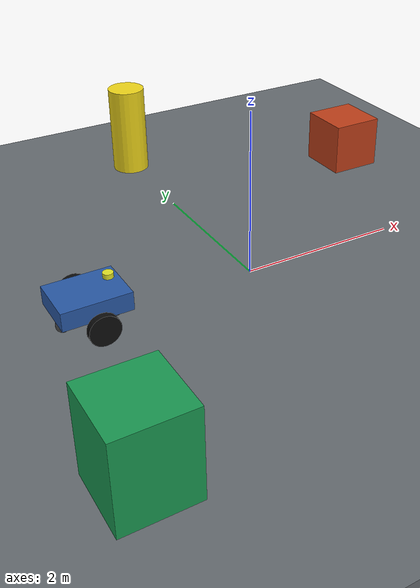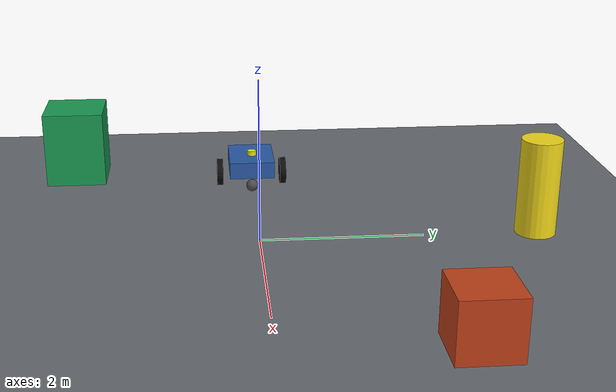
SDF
<?xml version="1.0"?>
<sdf version="1.9">
  <world name="baseline">
    <physics name="fixed_step" type="ignored">
      <max_step_size>0.001</max_step_size>
      <real_time_factor>1.0</real_time_factor>
      <real_time_update_rate>1000</real_time_update_rate>
    </physics>

    <gravity>0 0 -9.81</gravity>

    <plugin filename="gz-sim-physics-system" name="gz::sim::systems::Physics"/>
    <plugin filename="gz-sim-user-commands-system" name="gz::sim::systems::UserCommands"/>
    <plugin filename="gz-sim-scene-broadcaster-system" name="gz::sim::systems::SceneBroadcaster"/>
    <plugin filename="gz-sim-sensors-system" name="gz::sim::systems::Sensors">
      <render_engine>ogre2</render_engine>
    </plugin>
    <plugin filename="gz-sim-imu-system" name="gz::sim::systems::Imu"/>

    <light type="directional" name="sun">
      <cast_shadows>true</cast_shadows>
      <pose>0 0 10 0 0 0</pose>
      <diffuse>0.85 0.85 0.85 1</diffuse>
      <specular>0.2 0.2 0.2 1</specular>
      <attenuation>
        <range>1000</range>
        <constant>0.9</constant>
        <linear>0.01</linear>
        <quadratic>0.001</quadratic>
      </attenuation>
      <direction>-0.4 0.2 -0.9</direction>
    </light>

    <model name="ground_plane">
      <static>true</static>
      <link name="ground_link">
        <collision name="ground_collision">
          <geometry>
            <box>
              <size>30 20 0.10</size>
            </box>
          </geometry>
        </collision>
        <visual name="ground_visual">
          <geometry>
            <box>
              <size>30 20 0.10</size>
            </box>
          </geometry>
          <material>
            <ambient>0.32 0.34 0.36 1</ambient>
            <diffuse>0.40 0.42 0.44 1</diffuse>
            <specular>0.05 0.05 0.05 1</specular>
          </material>
        </visual>
      </link>
      <pose>0 0 -0.05 0 0 0</pose>
    </model>

    <!-- Fixed reference objects make the LiDAR view and rover motion legible. -->
    <model name="reference_block_east">
      <static>true</static>
      <pose>2.8 2.0 0.35 0 0 0</pose>
      <link name="block_link">
        <collision name="block_collision"><geometry><box><size>0.7 0.7 0.7</size></box></geometry></collision>
        <visual name="block_visual">
          <geometry><box><size>0.7 0.7 0.7</size></box></geometry>
          <material><ambient>0.55 0.18 0.08 1</ambient><diffuse>0.75 0.25 0.10 1</diffuse></material>
        </visual>
      </link>
    </model>

    <model name="reference_block_west">
      <static>true</static>
      <pose>-2.5 -2.4 0.50 0 0 0</pose>
      <link name="block_link">
        <collision name="block_collision"><geometry><box><size>0.8 0.8 1.0</size></box></geometry></collision>
        <visual name="block_visual">
          <geometry><box><size>0.8 0.8 1.0</size></box></geometry>
          <material><ambient>0.08 0.42 0.25 1</ambient><diffuse>0.10 0.60 0.32 1</diffuse></material>
        </visual>
      </link>
    </model>

    <model name="reference_marker_north">
      <static>true</static>
      <pose>0 3.4 0.6 0 0 0</pose>
      <link name="marker_link">
        <collision name="marker_collision"><geometry><cylinder><radius>0.25</radius><length>1.2</length></cylinder></geometry></collision>
        <visual name="marker_visual">
          <geometry><cylinder><radius>0.25</radius><length>1.2</length></cylinder></geometry>
          <material><ambient>0.75 0.70 0.08 1</ambient><diffuse>0.95 0.85 0.10 1</diffuse></material>
        </visual>
      </link>
    </model>

    <include>
      <uri>model://hil_rover</uri>
      <name>hil_rover</name>
      <pose>-2.0 0 0 0 0 0</pose>
    </include>
  </world>
</sdf>

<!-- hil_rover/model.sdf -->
<sdf version="1.9">
  <model name="hil_rover">
    <self_collide>false</self_collide>
    <allow_auto_disable>false</allow_auto_disable>
    <static>false</static>

    <!-- Main chassis: x forward, y left, z up. -->
    <link name="base_link">
      <pose>0 0 0.32 0 0 0</pose>
      <inertial>
        <mass>8.0</mass>
        <inertia>
          <ixx>0.2723</ixx>
          <ixy>0</ixy>
          <ixz>0</ixz>
          <iyy>0.4589</iyy>
          <iyz>0</iyz>
          <izz>0.6667</izz>
        </inertia>
      </inertial>
      <collision name="base_collision">
        <geometry>
          <box>
            <size>0.80 0.60 0.22</size>
          </box>
        </geometry>
        <surface>
          <contact>
            <ode>
              <kp>100000</kp>
              <kd>10</kd>
              <max_vel>0.1</max_vel>
              <min_depth>0.001</min_depth>
            </ode>
          </contact>
        </surface>
      </collision>
      <visual name="base_visual">
        <geometry>
          <box>
            <size>0.80 0.60 0.22</size>
          </box>
        </geometry>
        <material>
          <ambient>0.12 0.24 0.42 1</ambient>
          <diffuse>0.16 0.35 0.65 1</diffuse>
          <specular>0.2 0.2 0.2 1</specular>
        </material>
      </visual>
      <!-- The sphere center is 0.24 m below the base-link origin, placing
           its lowest point on the nominal z=0 ground plane. -->
      <collision name="front_support_collision">
        <pose>0.30 0 -0.24 0 0 0</pose>
        <geometry>
          <sphere><radius>0.08</radius></sphere>
        </geometry>
        <surface>
          <friction>
            <ode><mu>0.15</mu><mu2>0.15</mu2></ode>
            <bullet><friction>0.15</friction><friction2>0.15</friction2></bullet>
          </friction>
        </surface>
      </collision>
      <visual name="front_support_visual">
        <pose>0.30 0 -0.24 0 0 0</pose>
        <geometry>
          <sphere><radius>0.08</radius></sphere>
        </geometry>
        <material>
          <ambient>0.2 0.2 0.2 1</ambient>
          <diffuse>0.3 0.3 0.3 1</diffuse>
        </material>
      </visual>
    </link>

    <link name="left_wheel">
      <pose>0 0.43 0.18 0 0 0</pose>
      <inertial>
        <mass>0.45</mass>
        <inertia>
          <ixx>0.0039</ixx>
          <ixy>0</ixy>
          <ixz>0</ixz>
          <iyy>0.0073</iyy>
          <iyz>0</iyz>
          <izz>0.0039</izz>
        </inertia>
      </inertial>
      <collision name="left_wheel_collision">
        <pose>0 0 0 1.5707963 0 0</pose>
        <geometry>
          <cylinder>
            <radius>0.18</radius>
            <length>0.08</length>
          </cylinder>
        </geometry>
        <surface>
          <friction>
            <ode>
              <mu>0.9</mu>
              <mu2>0.9</mu2>
            </ode>
            <bullet>
              <friction>0.9</friction>
              <friction2>0.9</friction2>
            </bullet>
          </friction>
          <contact>
            <ode>
              <kp>100000</kp>
              <kd>10</kd>
              <max_vel>0.1</max_vel>
              <min_depth>0.001</min_depth>
            </ode>
          </contact>
        </surface>
      </collision>
      <visual name="left_wheel_visual">
        <pose>0 0 0 1.5707963 0 0</pose>
        <geometry>
          <cylinder>
            <radius>0.18</radius>
            <length>0.08</length>
          </cylinder>
        </geometry>
        <material>
          <ambient>0.03 0.03 0.03 1</ambient>
          <diffuse>0.05 0.05 0.05 1</diffuse>
          <specular>0.1 0.1 0.1 1</specular>
        </material>
      </visual>
    </link>

    <link name="right_wheel">
      <pose>0 -0.43 0.18 0 0 0</pose>
      <inertial>
        <mass>0.45</mass>
        <inertia>
          <ixx>0.0039</ixx>
          <ixy>0</ixy>
          <ixz>0</ixz>
          <iyy>0.0073</iyy>
          <iyz>0</iyz>
          <izz>0.0039</izz>
        </inertia>
      </inertial>
      <collision name="right_wheel_collision">
        <pose>0 0 0 1.5707963 0 0</pose>
        <geometry>
          <cylinder>
            <radius>0.18</radius>
            <length>0.08</length>
          </cylinder>
        </geometry>
        <surface>
          <friction>
            <ode>
              <mu>0.9</mu>
              <mu2>0.9</mu2>
            </ode>
            <bullet>
              <friction>0.9</friction>
              <friction2>0.9</friction2>
            </bullet>
          </friction>
          <contact>
            <ode>
              <kp>100000</kp>
              <kd>10</kd>
              <max_vel>0.1</max_vel>
              <min_depth>0.001</min_depth>
            </ode>
          </contact>
        </surface>
      </collision>
      <visual name="right_wheel_visual">
        <pose>0 0 0 1.5707963 0 0</pose>
        <geometry>
          <cylinder>
            <radius>0.18</radius>
            <length>0.08</length>
          </cylinder>
        </geometry>
        <material>
          <ambient>0.03 0.03 0.03 1</ambient>
          <diffuse>0.05 0.05 0.05 1</diffuse>
          <specular>0.1 0.1 0.1 1</specular>
        </material>
      </visual>
    </link>

    <link name="caster_link">
      <pose>-0.30 0 0.08 0 0 0</pose>
      <inertial>
        <mass>0.15</mass>
        <inertia>
          <ixx>0.0005</ixx>
          <ixy>0</ixy>
          <ixz>0</ixz>
          <iyy>0.0005</iyy>
          <iyz>0</iyz>
          <izz>0.0005</izz>
        </inertia>
      </inertial>
      <collision name="caster_collision">
        <geometry>
          <sphere>
            <radius>0.08</radius>
          </sphere>
        </geometry>
        <surface>
          <friction>
            <ode>
              <mu>0.15</mu>
              <mu2>0.15</mu2>
            </ode>
            <bullet>
              <friction>0.15</friction>
              <friction2>0.15</friction2>
            </bullet>
          </friction>
        </surface>
      </collision>
      <visual name="caster_visual">
        <geometry>
          <sphere>
            <radius>0.08</radius>
          </sphere>
        </geometry>
        <material>
          <ambient>0.2 0.2 0.2 1</ambient>
          <diffuse>0.3 0.3 0.3 1</diffuse>
        </material>
      </visual>
    </link>

    <link name="imu_link">
      <pose>0 0 0.49 0 0 0</pose>
      <inertial>
        <mass>0.01</mass>
        <inertia>
          <ixx>0.000001</ixx>
          <ixy>0</ixy>
          <ixz>0</ixz>
          <iyy>0.000001</iyy>
          <iyz>0</iyz>
          <izz>0.000001</izz>
        </inertia>
      </inertial>
      <sensor name="imu_sensor" type="imu">
        <always_on>true</always_on>
        <update_rate>100</update_rate>
        <visualize>false</visualize>
        <topic>/hil/gz/imu</topic>
        <imu>
          <angular_velocity>
            <x><noise type="gaussian"><mean>0</mean><stddev>0.0005</stddev></noise></x>
            <y><noise type="gaussian"><mean>0</mean><stddev>0.0005</stddev></noise></y>
            <z><noise type="gaussian"><mean>0</mean><stddev>0.001</stddev></noise></z>
          </angular_velocity>
          <linear_acceleration>
            <x><noise type="gaussian"><mean>0</mean><stddev>0.002</stddev></noise></x>
            <y><noise type="gaussian"><mean>0</mean><stddev>0.002</stddev></noise></y>
            <z><noise type="gaussian"><mean>0</mean><stddev>0.003</stddev></noise></z>
          </linear_acceleration>
        </imu>
      </sensor>
    </link>

    <link name="lidar_link">
      <pose>0.25 0 0.53 0 0 0</pose>
      <inertial>
        <mass>0.05</mass>
        <inertia>
          <ixx>0.00001</ixx>
          <ixy>0</ixy>
          <ixz>0</ixz>
          <iyy>0.00001</iyy>
          <iyz>0</iyz>
          <izz>0.00001</izz>
        </inertia>
      </inertial>
      <visual name="lidar_visual">
        <geometry>
          <cylinder>
            <radius>0.06</radius>
            <length>0.06</length>
          </cylinder>
        </geometry>
        <material>
          <ambient>0.8 0.8 0.1 1</ambient>
          <diffuse>0.9 0.9 0.15 1</diffuse>
        </material>
      </visual>
      <sensor name="planar_lidar" type="gpu_lidar">
        <pose>0 0 0 0 0 0</pose>
        <topic>/hil/gz/scan</topic>
        <update_rate>10</update_rate>
        <always_on>true</always_on>
        <visualize>true</visualize>
        <ray>
          <scan>
            <horizontal>
              <samples>360</samples>
              <resolution>1</resolution>
              <min_angle>-3.1415927</min_angle>
              <max_angle>3.1415927</max_angle>
            </horizontal>
            <vertical>
              <samples>1</samples>
              <resolution>1</resolution>
              <min_angle>0</min_angle>
              <max_angle>0</max_angle>
            </vertical>
          </scan>
          <range>
            <min>0.12</min>
            <max>12.0</max>
            <resolution>0.01</resolution>
          </range>
        </ray>
      </sensor>
    </link>

    <joint name="left_wheel_joint" type="revolute">
      <pose relative_to="left_wheel"/>
      <parent>base_link</parent>
      <child>left_wheel</child>
      <axis>
        <!-- Positive joint speed produces +x travel for this wheel geometry. -->
        <xyz expressed_in="__model__">0 1 0</xyz>
        <limit>
          <lower>-1.0e16</lower>
          <upper>1.0e16</upper>
          <effort>1.5</effort>
          <velocity>100</velocity>
        </limit>
        <dynamics>
          <damping>0.02</damping>
          <friction>0.01</friction>
        </dynamics>
      </axis>
    </joint>

    <joint name="right_wheel_joint" type="revolute">
      <pose relative_to="right_wheel"/>
      <parent>base_link</parent>
      <child>right_wheel</child>
      <axis>
        <xyz expressed_in="__model__">0 1 0</xyz>
        <limit>
          <lower>-1.0e16</lower>
          <upper>1.0e16</upper>
          <effort>1.5</effort>
          <velocity>100</velocity>
        </limit>
        <dynamics>
          <damping>0.02</damping>
          <friction>0.01</friction>
        </dynamics>
      </axis>
    </joint>

    <joint name="caster_joint" type="fixed">
      <parent>base_link</parent>
      <child>caster_link</child>
    </joint>

    <joint name="imu_joint" type="fixed">
      <parent>base_link</parent>
      <child>imu_link</child>
    </joint>

    <joint name="lidar_joint" type="fixed">
      <parent>base_link</parent>
      <child>lidar_link</child>
    </joint>

    <!-- Direct external effort interface; no Gazebo DiffDrive controller. -->
    <plugin filename="gz-sim-apply-joint-force-system" name="gz::sim::systems::ApplyJointForce">
      <joint_name>left_wheel_joint</joint_name>
    </plugin>
    <plugin filename="gz-sim-apply-joint-force-system" name="gz::sim::systems::ApplyJointForce">
      <joint_name>right_wheel_joint</joint_name>
    </plugin>

    <plugin filename="gz-sim-joint-state-publisher-system" name="gz::sim::systems::JointStatePublisher">
      <topic>/hil/gz/wheel_states</topic>
      <joint_name>left_wheel_joint</joint_name>
      <joint_name>right_wheel_joint</joint_name>
    </plugin>

    <plugin filename="gz-sim-odometry-publisher-system" name="gz::sim::systems::OdometryPublisher">
      <odom_frame>world</odom_frame>
      <robot_base_frame>base_link</robot_base_frame>
      <odom_publish_frequency>50</odom_publish_frequency>
      <odom_topic>/hil/gz/ground_truth/odom</odom_topic>
      <dimensions>2</dimensions>
    </plugin>
  </model>
</sdf>
